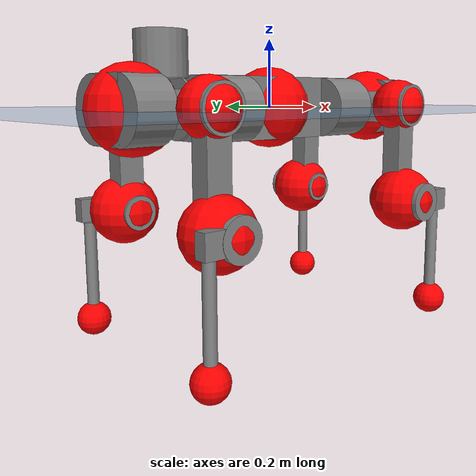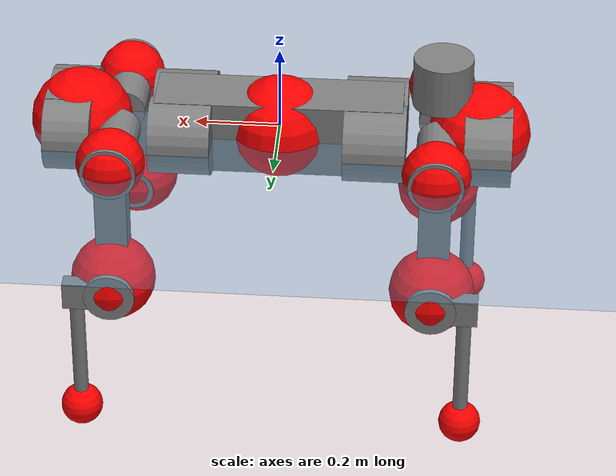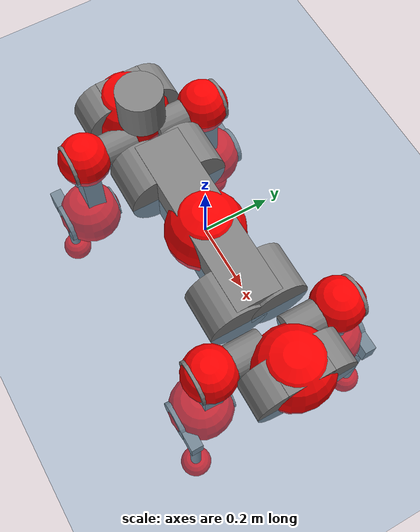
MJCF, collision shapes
<mujoco model="anymal_c">
  <compiler angle="radian" assetdir="assets" balanceinertia="true" inertiafromgeom="false"/>

  <option timestep="0.005" density="1.2" viscosity="2e-05"/>

  <size nkey="1"/>

  <visual>
    <quality shadowsize="8192"/>
    <map shadowclip="0.5"/>
  </visual>

  <default>
    <default class="/">
      <material specular="0" shininess="0.25"/>
      <geom contype="0" conaffinity="0" group="1" solref="-1000 -80"/>
      <site size="0.01 0.005 0.005" group="5"/>
      <general forcelimited="true" forcerange="-80 80" biastype="affine" gainprm="80" biasprm="0 -80 -2"/>
      <default class="anymal_c">
        <joint armature="0.01" damping="0.01" frictionloss="0.1"/>
        <default class="visual">
          <geom type="mesh" group="2"/>
          <default class="visual_zflip"/>
        </default>
        <default class="collision">
          <geom type="cylinder" group="3"/>
          <default class="foot">
            <geom size="0.03 0 0" type="sphere" condim="6" priority="1" friction="0.8 0.02 0.01" solimp="0.015 1 0.03"/>
          </default>
        </default>
      </default>
      <default class="reward_collision_sphere">
        <geom group="5" rgba="1 0 0 1"/>
      </default>
    </default>
  </default>

  <asset>
    <texture type="skybox" colorspace="auto" name="//unnamed_texture_0" builtin="gradient" rgb1="0.95 0.95 0.95" rgb2="0.95 0.95 0.95" width="100" height="600"/>
    <texture type="2d" colorspace="auto" name="texplane" builtin="checker" rgb1="0.345 0.575 0.748" rgb2="0.345 0.575 0.748" markrgb="1 1 1" width="512" height="512"/>
    <texture type="2d" colorspace="linear" name="base" file="base.png"/>
    <texture type="2d" colorspace="linear" name="top_shell" file="top_shell.png"/>
    <texture type="2d" colorspace="linear" name="bottom_shell" file="bottom_shell.png"/>
    <texture type="2d" colorspace="linear" name="remote" file="remote.png"/>
    <texture type="2d" colorspace="linear" name="hatch" file="hatch.png"/>
    <texture type="2d" colorspace="linear" name="handle" file="handle.png"/>
    <texture type="2d" colorspace="linear" name="face" file="face.png"/>
    <texture type="2d" colorspace="linear" name="battery" file="battery.png"/>
    <texture type="2d" colorspace="linear" name="lidar_cage" file="lidar_cage.png"/>
    <texture type="2d" colorspace="linear" name="depth_camera" file="depth_camera.png"/>
    <texture type="2d" colorspace="linear" name="wide_angle_camera" file="wide_angle_camera.png"/>
    <texture type="2d" colorspace="linear" name="lidar" file="lidar.png"/>
    <texture type="2d" colorspace="linear" name="drive" file="drive.png"/>
    <texture type="2d" colorspace="linear" name="hip_l" file="hip_l.png"/>
    <texture type="2d" colorspace="linear" name="shank_l" file="shank_l.png"/>
    <texture type="2d" colorspace="linear" name="foot" file="foot.png"/>
    <texture type="2d" colorspace="linear" name="thigh" file="thigh.png"/>
    <texture type="2d" colorspace="linear" name="shank_r" file="shank_r.png"/>
    <texture type="2d" colorspace="linear" name="hip_r" file="hip_r.png"/>
    <material name="MatPlane" class="/" texture="texplane" texuniform="true" texrepeat="2 2" specular="0.9" shininess="0.5"/>
    <material name="black_plastic" class="/" rgba="0.007 0.007 0.007 1"/>
    <material name="green" class="/" rgba="0.052 0.178 0.033 1"/>
    <material name="red" class="/" rgba="0.178 0.006 0.005 1"/>
    <material name="yellow" class="/" rgba="0.178 0.119 0.006 1"/>
    <material name="lwl" class="/" rgba="0.8 0.8 0.8 1"/>
    <material name="base" class="/" texture="base"/>
    <material name="top_shell" class="/" texture="top_shell"/>
    <material name="bottom_shell" class="/" texture="bottom_shell"/>
    <material name="hip_l" class="/" texture="hip_l"/>
    <material name="thigh" class="/" texture="thigh"/>
    <material name="shank_l" class="/" texture="shank_l"/>
    <material name="foot" class="/" texture="foot"/>
    <material name="hip_r" class="/" texture="hip_r"/>
    <material name="shank" class="/" texture="shank_r"/>
    <material name="hatch" class="/" texture="hatch"/>
    <material name="remote" class="/" texture="remote"/>
    <material name="handle" class="/" texture="handle"/>
    <material name="face" class="/" texture="face"/>
    <material name="depth_camera" class="/" texture="depth_camera"/>
    <material name="wide_angle_camera" class="/" texture="wide_angle_camera"/>
    <material name="battery" class="/" texture="battery"/>
    <material name="lidar_cage" class="/" texture="lidar_cage"/>
    <material name="lidar" class="/" texture="lidar"/>
    <material name="drive" class="/" texture="drive"/>
    <mesh name="base_0" class="/" file="base_0.obj"/>
    <mesh name="base_1" class="/" file="base_1.obj"/>
    <mesh name="base_2" class="/" file="base_2.obj"/>
    <mesh name="base_3" class="/" file="base_3.obj"/>
    <mesh name="base_4" class="/" file="base_4.obj"/>
    <mesh name="base_5" class="/" file="base_5.obj"/>
    <mesh name="top_shell" class="/" file="top_shell.obj"/>
    <mesh name="bottom_shell" class="/" file="bottom_shell.obj"/>
    <mesh name="remote" class="/" file="remote.obj"/>
    <mesh name="handle" class="/" file="handle.obj"/>
    <mesh name="face" class="/" file="face.obj"/>
    <mesh name="wide_angle_camera" class="/" file="wide_angle_camera.obj"/>
    <mesh name="depth_camera" class="/" file="depth_camera.obj"/>
    <mesh name="battery" class="/" file="battery.obj"/>
    <mesh name="lidar_cage" class="/" file="lidar_cage.obj"/>
    <mesh name="lidar" class="/" file="lidar.obj"/>
    <mesh name="drive" class="/" file="drive.obj"/>
    <mesh name="hip_l" class="/" file="hip_l.obj"/>
    <mesh name="thigh" class="/" file="thigh.obj"/>
    <mesh name="shank_l" class="/" file="shank_l.obj"/>
    <mesh name="foot" class="/" file="foot.obj"/>
    <mesh name="hip_r" class="/" file="hip_r.obj"/>
    <mesh name="hatch" class="/" file="hatch.obj"/>
    <mesh name="shank_r" class="/" file="shank_r.obj"/>
  </asset>

  <worldbody>
    <geom name="floor" class="/" size="100 100 0.125" type="plane" group="0" material="MatPlane"/>
    <light name="toplight_shadow" class="/" pos="0 0 5" dir="0.0990148 0.0990148 -0.990148" type="directional" ambient="0.04 0.04 0.04" diffuse="0.55 0.55 0.55" specular="0.12 0.12 0.12"/>
    <light name="toplight_fill" class="/" pos="0 0 5" dir="0.0990148 0.0990148 -0.990148" type="directional" castshadow="false" ambient="0.04 0.04 0.04" diffuse="0.3 0.3 0.3" specular="0.08 0.08 0.08"/>
    <body name="trunk" childclass="anymal_c" pos="-6.27479e-05 0.00073114 0.000173393" quat="1 -0.000212745 0.000133989 0.00025447">
      <inertial pos="0.00337258 -0.00130771 0.0510054" quat="0.502334 0.498727 0.502039 0.49688" mass="18.402" diaginertia="0.744356 0.356894 0.273012"/>
      <joint name="//unnamed_joint_0" type="free" armature="0" damping="0" frictionloss="0"/>
      <geom name="//unnamed_geom_1" class="visual" material="green" mesh="base_0"/>
      <geom name="//unnamed_geom_2" class="visual" material="yellow" mesh="base_1"/>
      <geom name="//unnamed_geom_3" class="visual" material="red" mesh="base_2"/>
      <geom name="//unnamed_geom_4" class="visual" material="black_plastic" mesh="base_3"/>
      <geom name="//unnamed_geom_5" class="visual" material="lwl" mesh="base_4"/>
      <geom name="//unnamed_geom_6" class="visual" material="base" mesh="base_5"/>
      <geom name="trunk_1" class="collision" size="0.288854 0.0697235 0.0896445" type="box"/>
      <geom name="trunk_2" class="collision" size="0.0896445 0.0722136" pos="0.225776 0.0629227 0" quat="0.707107 0 0.707107 0"/>
      <geom name="trunk_3" class="collision" size="0.0896445 0.0722136" pos="-0.225776 0.0629227 0" quat="0.707107 0 0.707107 0"/>
      <geom name="trunk_4" class="collision" size="0.0896445 0.0722136" pos="0.225776 -0.0629227 0" quat="0.707107 0 0.707107 0"/>
      <geom name="trunk_5" class="collision" size="0.0896445 0.0722136" pos="-0.225776 -0.0629227 0" quat="0.707107 0 0.707107 0"/>
      <geom name="//unnamed_geom_12" class="visual" material="top_shell" mesh="top_shell"/>
      <geom name="//unnamed_geom_13" class="visual" material="bottom_shell" mesh="bottom_shell"/>
      <geom name="//unnamed_geom_14" class="visual" material="remote" mesh="remote"/>
      <geom name="//unnamed_geom_15" class="visual" material="handle" mesh="handle"/>
      <geom name="//unnamed_geom_16" class="visual" pos="0.430271 0 0" quat="1 0 0 0" material="face" mesh="face"/>
      <geom name="trunk_6" class="collision" size="0.0547827 0.0697235 0.0896445" pos="0.487364 0 0" type="box"/>
      <geom name="//unnamed_geom_18" class="collision" size="0.0896445 0.0547827" pos="0.487364 0.0629227 0" quat="0.707107 0 0.707107 0"/>
      <geom name="//unnamed_geom_19" class="collision" size="0.0896445 0.0547827" pos="0.487364 -0.0629227 0" quat="0.707107 0 0.707107 0"/>
      <geom name="//unnamed_geom_20" class="visual" pos="0.479216 0 -0.0307951" quat="0.965926 0 0.258819 0" material="depth_camera" mesh="depth_camera"/>
      <geom name="//unnamed_geom_21" class="visual" pos="0.532519 0 0.0157365" material="wide_angle_camera" mesh="wide_angle_camera"/>
      <geom name="//unnamed_geom_22" class="visual_zflip" pos="-0.430271 0 0" quat="0 0 0 1" material="face" mesh="face"/>
      <geom name="trunk_7" class="collision" size="0.0547827 0.0697235 0.0896445" pos="-0.487364 0 0" quat="0 0 0 1" type="box"/>
      <geom name="//unnamed_geom_24" class="collision" size="0.0896445 0.0547827" pos="-0.487364 -0.0629227 0" quat="0 -0.707107 0 0.707107"/>
      <geom name="//unnamed_geom_25" class="collision" size="0.0896445 0.0547827" pos="-0.487364 0.0629227 0" quat="0 -0.707107 0 0.707107"/>
      <geom name="//unnamed_geom_26" class="visual" pos="-0.479216 0 -0.0307951" quat="0 -0.258819 0 0.965926" material="depth_camera" mesh="depth_camera"/>
      <geom name="//unnamed_geom_27" class="visual_zflip" pos="-0.532519 0 0.0157365" quat="0 0 0 1" material="wide_angle_camera" mesh="wide_angle_camera"/>
      <geom name="//unnamed_geom_28" class="visual" material="battery" mesh="battery"/>
      <geom name="//unnamed_geom_29" class="visual" pos="0 0.0669042 0.0304375" quat="0.683013 -0.183013 0.183013 0.683013" material="depth_camera" mesh="depth_camera"/>
      <geom name="//unnamed_geom_30" class="visual" pos="0 -0.0669042 0.0304375" quat="0.683013 0.183013 0.183013 -0.683013" material="depth_camera" mesh="depth_camera"/>
      <geom name="//unnamed_geom_31" class="visual" pos="-0.37785 0 0.0772635" quat="1 0 0 0" material="lidar_cage" mesh="lidar_cage"/>
      <geom name="trunk_8" class="collision" size="0.0697235 0.059763" pos="-0.37785 0 0.140336"/>
      <geom name="//unnamed_geom_33" class="visual" pos="-0.37785 -5.46694e-05 0.149481" quat="0.707107 0 0 -0.707107" material="lidar" mesh="lidar"/>
      <geom name="//unnamed_geom_34" class="visual" pos="0.311311 0.0935393 -2.62732e-09" quat="0.258819 0.965926 0 0" material="drive" mesh="drive"/>
      <geom name="//unnamed_geom_35" class="visual" pos="0.311311 -0.0935393 2.62732e-09" quat="0.258819 -0.965926 0 0" material="drive" mesh="drive"/>
      <geom name="//unnamed_geom_36" class="visual" pos="-0.311311 0.0935393 2.62732e-09" quat="0 0 0.965926 -0.258819" material="drive" mesh="drive"/>
      <geom name="//unnamed_geom_37" class="visual" pos="-0.311311 -0.0935393 -2.62732e-09" quat="0 0 -0.965926 -0.258819" material="drive" mesh="drive"/>
      <geom name="//unnamed_geom_38" class="visual" pos="0.120414 0 0.0767379" quat="1 0 0 0" material="hatch" mesh="hatch"/>
      <geom name="//unnamed_geom_39" class="reward_collision_sphere" size="0.119526"/>
      <geom name="//unnamed_geom_40" class="reward_collision_sphere" size="0.119526" pos="0.467122 0 0"/>
      <geom name="//unnamed_geom_41" class="reward_collision_sphere" size="0.119526" pos="-0.467122 0 0"/>
      <site name="imu" pos="0.257474 0.00617561 0.0472899" size="0.0099605"/>
      <camera name="track" pos="0 -1.79779 0" quat="0.707107 0.707107 0 0" mode="trackcom"/>
      <camera name="ego_camera" pos="0.467122 0 -0.0420481" quat="-0.5 -0.5 0.5 0.5"/>
      <body name="LF_HIP" pos="0.312095 0.0936226 -0.000173797" quat="0.258834 0.965922 2.26839e-06 -2.69092e-05">
        <inertial pos="0.0588373 -0.0133331 -0.00862675" quat="-0.127314 0.705836 -0.130844 0.684446" mass="2.75703" diaginertia="0.00711625 0.00293395 0.0042639"/>
        <joint name="LF_HAA" pos="0 0 0" axis="0.999999 0.000939282 -0.00144507" range="-0.700483 0.479034" armature="0.0100769" damping="0.00887615" frictionloss="0.0985349"/>
        <geom name="//unnamed_geom_42" class="visual" pos="0 -0.000154553 2.53853e-05" quat="0.258819 -0.965926 0 0" material="hip_l" mesh="hip_l"/>
        <geom name="//unnamed_geom_43" class="visual" pos="0.0621791 -0.0735652 -0.0435994" quat="0.183013 -0.683013 0.683013 0.183013" material="drive" mesh="drive"/>
        <geom name="//unnamed_geom_44" class="collision" size="0.0498025 0.0697235" pos="0.0621791 -0.0107506 -0.00725856" quat="-0.353553 -0.612372 0.612372 -0.353553"/>
        <body name="LF_THIGH" pos="0.0625628 -0.0665579 -0.044786" quat="0.183406 -0.682832 0.682955 0.183509">
          <inertial pos="0.0320524 0.001418 -0.258721" quat="0.993322 -0.00811943 -0.0794403 0.0832753" mass="3.00619" diaginertia="0.0363696 0.0178277 0.00539077"/>
          <joint name="LF_HFE" pos="0 0 0" axis="0.999999 0.00154243 5.55574e-05" range="-3.13138 3.12263" armature="0.0105757" damping="0.0120791" frictionloss="0.104347"/>
          <geom name="//unnamed_geom_45" class="visual" pos="0.00276859 4.36266e-06 0" quat="0.707107 0 0 -0.707107" material="thigh" mesh="thigh"/>
          <geom name="//unnamed_geom_46" class="collision" size="0.0647432 0.039842" pos="0.041522 0 0" quat="0.5 0.5 -0.5 -0.5"/>
          <geom name="//unnamed_geom_47" class="collision" size="0.0373519 0.0298815 0.140756" pos="0.0311415 0 -0.14855" quat="0.707107 0 0 -0.707107" type="box"/>
          <geom name="//unnamed_geom_48" class="visual" pos="0.104116 0 -0.299593" quat="1 0 0 0" material="drive" mesh="drive"/>
          <geom name="//unnamed_geom_49" class="collision" size="0.0498025 0.0697235" pos="0.0314529 0 -0.299593" quat="0.707107 0 0.707107 0"/>
          <geom name="//unnamed_geom_50" class="reward_collision_sphere" size="0.079684" pos="0.0259512 0 0"/>
          <body name="LF_SHANK" pos="0.104353 -0.000147412 -0.300638" quat="1 -9.71083e-05 3.7343e-05 -4.6901e-05">
            <inertial pos="0.00521172 -0.0541878 -0.0847541" quat="0.993018 -0.115146 -0.00326618 -0.0254264" mass="0.584787" diaginertia="0.0123952 0.0055285 0.00144887"/>
            <joint name="LF_KFE" pos="0 0 0" axis="1 0.000464095 -0.000163329" range="-3.11417 3.13504" armature="0.0104727" damping="0.00383468" frictionloss="0.098172"/>
            <geom name="//unnamed_geom_51" class="visual" pos="0.000902778 0.00481366 0" quat="0.707107 0 0 -0.707107" material="shank_l" mesh="shank_l"/>
            <geom name="LF_kfe_act" class="collision" size="0.059763 0.019921" pos="0.020761 0 0" quat="0.5 0.5 -0.5 -0.5"/>
            <geom name="//unnamed_geom_53" class="collision" size="0.0572719 0.0336167 0.0189249" pos="0.020761 -0.0516856 0" quat="0.5 0.5 -0.5 -0.5" type="box"/>
            <geom name="//unnamed_geom_54" class="visual" pos="0.0135463 -0.0775067 -0.355275" quat="0.382683 0 0 -0.92388" material="foot" mesh="foot"/>
            <geom name="LF_calf" class="collision" size="0.0174309 0.140694" pos="0.0135465 -0.0790579 -0.177638" quat="0.707107 0 0 -0.707107"/>
            <geom name="LF_foot" class="foot" size="0.0301416" pos="0.0135465 -0.0790579 -0.331623" quat="0.707107 0 0 -0.707107"/>
            <geom name="//unnamed_geom_57" class="reward_collision_sphere" size="0.099605" pos="-0.0519025 0 0"/>
            <geom name="//unnamed_geom_58" class="reward_collision_sphere" size="0.0498025" pos="0.0135465 -0.0790579 -0.331623"/>
            <site name="LF_foot" class="foot" pos="0.0135465 -0.0790579 -0.331623" quat="0.707107 0 0 -0.707107" size="0.0099605"/>
          </body>
        </body>
      </body>
      <body name="RF_HIP" pos="0.310754 -0.0929591 -0.00149778" quat="0.25883 -0.965923 -0.000155968 -0.000117821">
        <inertial pos="0.0585452 0.0133431 -0.00805048" quat="0.132897 0.680185 0.128661 0.709318" mass="2.7675" diaginertia="0.00711237 0.00289066 0.00420126"/>
        <joint name="RF_HAA" pos="0 0 0" axis="0.999995 0.000173306 -0.00311937" range="-0.493433 0.728691" armature="0.010457" damping="0.0108999" frictionloss="0.0995957"/>
        <geom name="//unnamed_geom_59" class="visual" pos="0 0.000154552 2.53852e-05" quat="0.258819 0.965926 0 0" material="hip_r" mesh="hip_r"/>
        <geom name="//unnamed_geom_60" class="visual" pos="0.0621791 0.0735652 -0.0435994" quat="0.183013 0.683013 0.683013 -0.183013" material="drive" mesh="drive"/>
        <geom name="//unnamed_geom_61" class="collision" size="0.0498025 0.0697235" pos="0.0621791 0.0107506 -0.00725856" quat="-0.353553 0.612372 0.612372 0.353553"/>
        <body name="RF_THIGH" pos="0.0631024 0.0663794 -0.0456438" quat="0.183024 0.683021 0.683007 -0.182992">
          <inertial pos="0.0311403 0.000724299 -0.257148" quat="0.992788 -0.00662755 -0.0793451 0.0896244" mass="3.03665" diaginertia="0.0368396 0.0175548 0.00537566"/>
          <joint name="RF_HFE" pos="0 0 0" axis="0.999993 0.00378123 0.000356194" stiffness="0.00948916" range="-3.13976 3.13011" armature="0.00974391" damping="0.0111433" frictionloss="0.103894"/>
          <geom name="//unnamed_geom_62" class="visual" pos="0.00276859 4.36266e-06 0" quat="0.707107 0 0 -0.707107" material="thigh" mesh="thigh"/>
          <geom name="//unnamed_geom_63" class="collision" size="0.0647432 0.039842" pos="0.041522 0 0" quat="0.5 0.5 0.5 0.5"/>
          <geom name="//unnamed_geom_64" class="collision" size="0.0373519 0.0298815 0.140756" pos="0.0311415 0 -0.14855" quat="0.707107 0 0 0.707107" type="box"/>
          <geom name="//unnamed_geom_65" class="visual" pos="0.104116 0 -0.299593" quat="1 0 0 0" material="drive" mesh="drive"/>
          <geom name="//unnamed_geom_66" class="collision" size="0.0498025 0.0697235" pos="0.0314529 0 -0.299593" quat="0.707107 0 0.707107 0"/>
          <geom name="//unnamed_geom_67" class="reward_collision_sphere" size="0.079684" pos="0.0259512 0 0"/>
          <body name="RF_SHANK" pos="0.104431 -0.00039746 -0.298319" quat="1 7.1608e-05 -0.000130451 -0.000164076">
            <inertial pos="0.00678139 0.0543568 -0.0849526" quat="0.992758 0.117287 -0.00449991 0.0255764" mass="0.590863" diaginertia="0.0125392 0.00546655 0.00147559"/>
            <joint name="RF_KFE" pos="0 0 0" axis="0.999997 -0.00183327 -0.00172404" range="-3.15037 3.13895" armature="0.00971066" damping="0.000550847" frictionloss="0.102179"/>
            <geom name="//unnamed_geom_68" class="visual" pos="0.000902773 -0.00481365 0" quat="0.707107 0 0 0.707107" material="shank" mesh="shank_r"/>
            <geom name="RF_kfe_act" class="collision" size="0.059763 0.019921" pos="0.020761 0 0" quat="0.5 0.5 0.5 0.5"/>
            <geom name="//unnamed_geom_70" class="collision" size="0.0572719 0.0336167 0.0189249" pos="0.020761 0.0516856 0" quat="0.5 0.5 0.5 0.5" type="box"/>
            <geom name="//unnamed_geom_71" class="visual" pos="0.0135468 0.0775067 -0.355275" quat="0.382683 0 0 0.92388" material="foot" mesh="foot"/>
            <geom name="RF_calf" class="collision" size="0.0174309 0.140694" pos="0.0135465 0.0790579 -0.177638" quat="0.707107 0 0 0.707107"/>
            <geom name="RF_foot" class="foot" size="0.0273464" pos="0.0135465 0.0790579 -0.331623" quat="0.707107 0 0 0.707107"/>
            <geom name="//unnamed_geom_74" class="reward_collision_sphere" size="0.099605" pos="-0.0519025 0 0"/>
            <geom name="//unnamed_geom_75" class="reward_collision_sphere" size="0.0498025" pos="0.0135465 0.0790579 -0.331623"/>
            <site name="RF_foot" class="foot" pos="0.0135465 0.0790579 -0.331623" quat="0.707107 0 0 0.707107" size="0.0099605"/>
          </body>
        </body>
      </body>
      <body name="LH_HIP" pos="-0.310795 0.0927824 -6.82614e-05" quat="-1.71637e-06 2.26315e-06 0.965926 -0.258818">
        <inertial pos="0.0594296 0.0132364 -0.00963302" quat="0.134824 0.679286 0.129465 0.70967" mass="2.72143" diaginertia="0.00707411 0.00294372 0.00420684"/>
        <joint name="LH_HAA" pos="0 0 0" axis="0.999992 0.00385018 -0.000809231" range="-0.492836 0.729525" armature="0.0097775" damping="0.0104918" frictionloss="0.0981438"/>
        <geom name="//unnamed_geom_76" class="visual" pos="0 0.000154552 2.53852e-05" quat="-0.258819 -0.965926 0 0" material="hip_r" mesh="hip_r"/>
        <geom name="//unnamed_geom_77" class="visual" pos="0.0621791 0.0735652 -0.0435994" quat="0.183013 0.683013 0.683013 -0.183013" material="drive" mesh="drive"/>
        <geom name="//unnamed_geom_78" class="collision" size="0.0498025 0.0697235" pos="0.0621791 0.0107506 -0.00725856" quat="-0.353553 0.612372 0.612372 0.353553"/>
        <body name="LH_THIGH" pos="0.0616843 0.0661748 -0.0448164" quat="0.182445 0.683276 0.682945 -0.182847">
          <inertial pos="0.0317395 0.00141521 -0.258546" quat="0.992699 -0.0058277 -0.082057 0.0882169" mass="2.9872" diaginertia="0.0368325 0.017311 0.0053908"/>
          <joint name="LH_HFE" pos="0 0 0" axis="0.999982 0.00222313 -0.00559615" range="-3.15115 3.14639" armature="0.00957848" damping="0.00673672" frictionloss="0.104311"/>
          <geom name="//unnamed_geom_79" class="visual" pos="0.00276859 4.36266e-06 0" quat="0.707107 0 0 -0.707107" material="thigh" mesh="thigh"/>
          <geom name="//unnamed_geom_80" class="collision" size="0.0647432 0.039842" pos="0.041522 0 0" quat="0.5 0.5 -0.5 -0.5"/>
          <geom name="//unnamed_geom_81" class="collision" size="0.0373519 0.0298815 0.140756" pos="0.0311415 0 -0.14855" quat="0.707107 0 0 -0.707107" type="box"/>
          <geom name="//unnamed_geom_82" class="visual" pos="0.104116 0 -0.299593" quat="1 0 0 0" material="drive" mesh="drive"/>
          <geom name="//unnamed_geom_83" class="collision" size="0.0498025 0.0697235" pos="0.0314529 0 -0.299593" quat="0.707107 0 0.707107 0"/>
          <geom name="//unnamed_geom_84" class="reward_collision_sphere" size="0.079684" pos="0.0259512 0 0"/>
          <body name="LH_SHANK" pos="0.104863 -0.00103383 -0.300609" quat="1 -0.000487628 -0.000248574 0.0001278">
            <inertial pos="0.00585582 0.0549014 -0.0848522" quat="0.993025 0.115042 -0.00137534 0.0257919" mass="0.586192" diaginertia="0.012413 0.00548828 0.00145045"/>
            <joint name="LH_KFE" pos="0 0 0" axis="1 -1.49139e-05 0.000103402" range="-3.12297 3.14245" armature="0.0106219" damping="0.00643113" frictionloss="0.103638"/>
            <geom name="//unnamed_geom_85" class="visual" pos="0.000902773 -0.00481365 0" quat="-0.707107 0 0 -0.707107" material="shank" mesh="shank_r"/>
            <geom name="LH_kfe_act" class="collision" size="0.059763 0.019921" pos="0.020761 0 0" quat="0.5 0.5 -0.5 -0.5"/>
            <geom name="//unnamed_geom_87" class="collision" size="0.0572719 0.0336167 0.0189249" pos="0.020761 0.0516856 0" quat="0.5 0.5 -0.5 -0.5" type="box"/>
            <geom name="//unnamed_geom_88" class="visual" pos="0.0135468 0.0775067 -0.355275" quat="-0.382683 0 0 -0.92388" material="foot" mesh="foot"/>
            <geom name="LH_calf" class="collision" size="0.0174309 0.140694" pos="0.0135465 0.0790579 -0.177638" quat="0.707107 0 0 -0.707107"/>
            <geom name="LH_foot" class="foot" size="0.0315133" pos="0.0135465 0.0790579 -0.331623" quat="0.707107 0 0 -0.707107"/>
            <geom name="//unnamed_geom_91" class="reward_collision_sphere" size="0.099605" pos="-0.0519025 0 0"/>
            <geom name="//unnamed_geom_92" class="reward_collision_sphere" size="0.0498025" pos="0.0135465 0.0790579 -0.331623"/>
            <site name="LH_foot" class="foot" pos="0.0135465 0.0790579 -0.331623" quat="0.707107 0 0 -0.707107" size="0.0099605"/>
          </body>
        </body>
      </body>
      <body name="RH_HIP" pos="-0.312482 -0.0933611 5.7395e-05" quat="0.000588154 -7.9135e-05 -0.966087 -0.258214">
        <inertial pos="0.05855 -0.0137223 -0.00942835" quat="-0.128158 0.709609 -0.136214 0.679321" mass="2.77607" diaginertia="0.00713468 0.00291397 0.0043546"/>
        <joint name="RH_HAA" pos="0 0 0" axis="1 -0.000707369 -0.000555324" range="-0.731588 0.479963" armature="0.0102946" damping="0.0112196" frictionloss="0.0952748"/>
        <geom name="//unnamed_geom_93" class="visual" pos="0 -0.000154553 2.53853e-05" quat="-0.258819 0.965926 0 0" material="hip_l" mesh="hip_l"/>
        <geom name="//unnamed_geom_94" class="visual" pos="0.0621791 -0.0735652 -0.0435994" quat="-0.183013 0.683013 -0.683013 -0.183013" material="drive" mesh="drive"/>
        <geom name="//unnamed_geom_95" class="collision" size="0.0498025 0.0697235" pos="0.0621791 -0.0107506 -0.00725856" quat="0.353553 0.612372 -0.612372 0.353553"/>
        <body name="RH_THIGH" pos="0.0627695 -0.0658971 -0.0443958" quat="-0.182669 0.683158 -0.682996 -0.182873">
          <inertial pos="0.0324181 0.000306883 -0.257867" quat="0.992992 -0.00327033 -0.0820399 0.0850073" mass="3.04232" diaginertia="0.0364936 0.01762 0.00544451"/>
          <joint name="RH_HFE" pos="0 0 0" axis="0.999998 0.0013871 0.00170489" range="-3.14398 3.17229" armature="0.00937367" damping="0.00815592" frictionloss="0.100367"/>
          <geom name="//unnamed_geom_96" class="visual" pos="0.00276859 4.36266e-06 0" quat="0.707107 0 0 -0.707107" material="thigh" mesh="thigh"/>
          <geom name="//unnamed_geom_97" class="collision" size="0.0647432 0.039842" pos="0.041522 0 0" quat="0.5 0.5 0.5 0.5"/>
          <geom name="//unnamed_geom_98" class="collision" size="0.0373519 0.0298815 0.140756" pos="0.0311415 0 -0.14855" quat="0.707107 0 0 0.707107" type="box"/>
          <geom name="//unnamed_geom_99" class="visual" pos="0.104116 0 -0.299593" quat="1 0 0 0" material="drive" mesh="drive"/>
          <geom name="//unnamed_geom_100" class="collision" size="0.0498025 0.0697235" pos="0.0314529 0 -0.299593" quat="0.707107 0 0.707107 0"/>
          <geom name="//unnamed_geom_101" class="reward_collision_sphere" size="0.079684" pos="0.0259512 0 0"/>
          <body name="RH_SHANK" pos="0.103011 0.000598021 -0.299698" quat="1 -1.06053e-05 9.01591e-06 -1.68598e-07">
            <inertial pos="0.00670805 -0.0544135 -0.0849847" quat="0.992943 -0.115794 -0.00111006 -0.025586" mass="0.575816" diaginertia="0.0122408 0.00535698 0.00143392"/>
            <joint name="RH_KFE" pos="0 0 0" axis="0.999981 -0.00450028 -0.00417113" stiffness="0.00110017" range="-3.11129 3.11816" armature="0.00976004" damping="0.00606497" frictionloss="0.0948949"/>
            <geom name="//unnamed_geom_102" class="visual" pos="0.000902778 0.00481366 0" quat="0.707107 0 0 -0.707107" material="shank_l" mesh="shank_l"/>
            <geom name="RH_kfe_act" class="collision" size="0.059763 0.019921" pos="0.020761 0 0" quat="0.5 0.5 0.5 0.5"/>
            <geom name="//unnamed_geom_104" class="collision" size="0.0572719 0.0336167 0.0189249" pos="0.020761 -0.0516856 0" quat="0.5 0.5 0.5 0.5" type="box"/>
            <geom name="//unnamed_geom_105" class="visual" pos="0.0135463 -0.0775067 -0.355275" quat="0.382683 0 0 -0.92388" material="foot" mesh="foot"/>
            <geom name="RH_calf" class="collision" size="0.0174309 0.140694" pos="0.0135465 -0.0790579 -0.177638" quat="0.707107 0 0 0.707107"/>
            <geom name="RH_foot" class="foot" size="0.0287218" pos="0.0135465 -0.0790579 -0.331623" quat="0.707107 0 0 0.707107"/>
            <geom name="//unnamed_geom_108" class="reward_collision_sphere" size="0.099605" pos="-0.0519025 0 0"/>
            <geom name="//unnamed_geom_109" class="reward_collision_sphere" size="0.0498025" pos="0.0135465 -0.0790579 -0.331623"/>
            <site name="RH_foot" class="foot" pos="0.0135465 -0.0790579 -0.331623" quat="0.707107 0 0 0.707107" size="0.0099605"/>
          </body>
        </body>
      </body>
    </body>
  </worldbody>

  <contact>
    <pair class="/" geom1="floor" geom2="LF_foot" name="//unnamed_contact_0"/>
    <pair class="/" geom1="floor" geom2="RF_foot" name="//unnamed_contact_1"/>
    <pair class="/" geom1="floor" geom2="LH_foot" name="//unnamed_contact_2"/>
    <pair class="/" geom1="floor" geom2="RH_foot" name="//unnamed_contact_3"/>
  </contact>

  <actuator>
    <general name="LF_HAA" class="/" joint="LF_HAA" forcerange="-77.4929 77.4929" gainprm="80.4106" biasprm="0 -80.4106 -1.88201"/>
    <general name="LF_HFE" class="/" joint="LF_HFE" forcerange="-79.5078 79.5078" gainprm="80.4106" biasprm="0 -80.4106 -1.88201"/>
    <general name="LF_KFE" class="/" joint="LF_KFE" forcerange="-80.1786 80.1786" gainprm="80.4106" biasprm="0 -80.4106 -1.88201"/>
    <general name="RF_HAA" class="/" joint="RF_HAA" forcerange="-83.2043 83.2043" gainprm="80.4106" biasprm="0 -80.4106 -1.88201"/>
    <general name="RF_HFE" class="/" joint="RF_HFE" forcerange="-80.4372 80.4372" gainprm="80.4106" biasprm="0 -80.4106 -1.88201"/>
    <general name="RF_KFE" class="/" joint="RF_KFE" forcerange="-81.3018 81.3018" gainprm="80.4106" biasprm="0 -80.4106 -1.88201"/>
    <general name="LH_HAA" class="/" joint="LH_HAA" forcerange="-79.8946 79.8946" gainprm="80.4106" biasprm="0 -80.4106 -1.88201"/>
    <general name="LH_HFE" class="/" joint="LH_HFE" forcerange="-80.4406 80.4406" gainprm="80.4106" biasprm="0 -80.4106 -1.88201"/>
    <general name="LH_KFE" class="/" joint="LH_KFE" forcerange="-79.0107 79.0107" gainprm="80.4106" biasprm="0 -80.4106 -1.88201"/>
    <general name="RH_HAA" class="/" joint="RH_HAA" forcerange="-82.5361 82.5361" gainprm="80.4106" biasprm="0 -80.4106 -1.88201"/>
    <general name="RH_HFE" class="/" joint="RH_HFE" forcerange="-78.1863 78.1863" gainprm="80.4106" biasprm="0 -80.4106 -1.88201"/>
    <general name="RH_KFE" class="/" joint="RH_KFE" forcerange="-81.4756 81.4756" gainprm="80.4106" biasprm="0 -80.4106 -1.88201"/>
  </actuator>

  <sensor>
    <gyro site="imu" name="imu_angular_velocity"/>
    <velocimeter site="imu" name="imu_linear_velocity"/>
    <framelinvel objtype="site" objname="LF_foot" name="LF_foot_global_linear_velocity"/>
    <framelinvel objtype="site" objname="RF_foot" name="RF_foot_global_linear_velocity"/>
    <framelinvel objtype="site" objname="LH_foot" name="LH_foot_global_linear_velocity"/>
    <framelinvel objtype="site" objname="RH_foot" name="RH_foot_global_linear_velocity"/>
  </sensor>

  <keyframe>
    <key name="home" qpos="0 0 0.55 1 0 0 0 0 0.4 -0.8 0 -0.4 0.8 0 -0.4 0.8 0 0.4 -0.8"/>
  </keyframe>
</mujoco>
